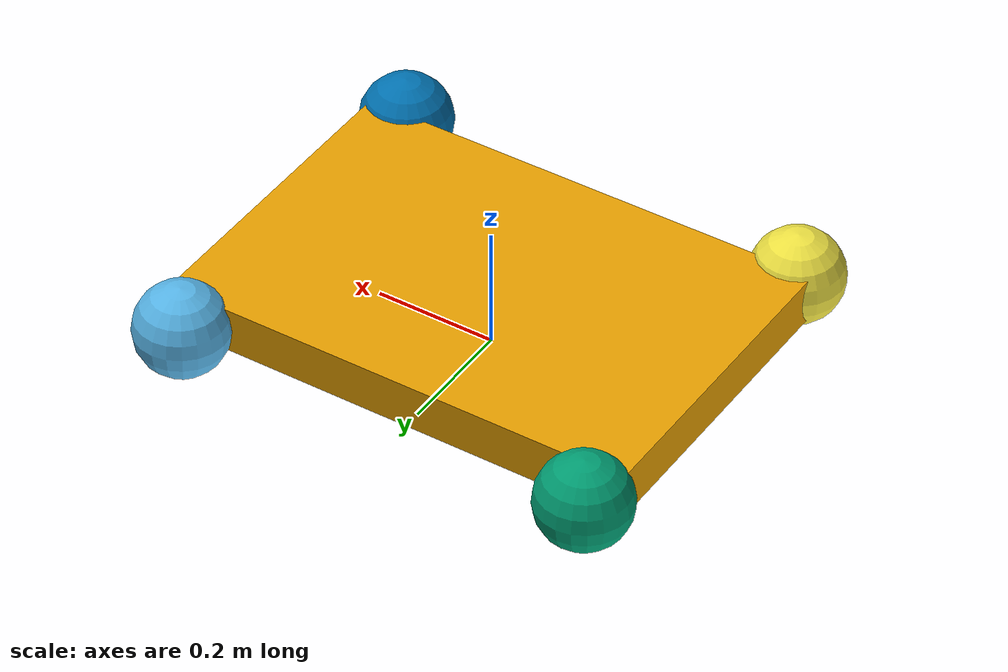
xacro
<?xml version="1.0"?>
<robot xmlns:xacro="http://www.ros.org/wiki/xacro" name="MyRobot" >

  <property name="mb_pi" value="3.14159265" />
  <property name="mb_mass" value="22.2260" />

  <property name="chassis_sx" value="0.7874" />
  <property name="chassis_sy" value="0.5334" />
  <property name="chassis_sz" value="0.0762" />

  <property name="wheel_height" value="0.0470" />
  <property name="wheel_radius" value="0.0758" />
  <property name="wheel_axis_offset" value="0.3494" />
  <property name="wheel_chassis_offset" value="0.0093" />
  <property name="wheel_mass" value="0.9072" />
  <property name="wheel_joint_urdf_max_effort" value="100.0" />
  <property name="wheel_joint_urdf_max_velocity" value="100.0" />
  <property name="wheel_joint_urdf_damping" value="0.0" />
  <property name="wheel_joint_urdf_friction" value="0.0" />

  <!-- Macros definition. -->
  <xacro:macro name="box_inertia" params="sizeX sizeY sizeZ mass *origin">
    <inertial>
      <mass value="${mass}" />
      <insert_block name="origin" />
      <inertia ixx="${mass / 12 * (sizeY * sizeY + sizeZ * sizeZ)}" ixy="0.0" ixz="0.0"
               iyy="${mass / 12 * (sizeX * sizeX + sizeZ * sizeZ)}" iyz="0.0"
               izz="${mass / 12 * (sizeX * sizeX + sizeY * sizeY)}" />
    </inertial>
  </xacro:macro>

  <xacro:macro name="sphere_inertia" params="radius mass *origin">
    <inertial>
      <mass value="${mass}" />
      <insert_block name="origin" />
      <inertia ixx="${2.0 / 5.0 * mass * radius * radius}" ixy="0.0" ixz="0.0"
               iyy="${2.0 / 5.0 * mass * radius * radius}" iyz="0.0"
               izz="${2.0 / 5.0 * mass * radius * radius}" />
    </inertial>
  </xacro:macro>

  <xacro:macro name="mr_wheel" params="fb lr parent sideX sideY scaleXZ">
    <joint name="${fb}_${lr}_wheel_joint" type="continuous">
      <parent link="${parent}" />
      <child link="${fb}_${lr}_wheel" />
      <origin xyz="${sideX * wheel_axis_offset} ${sideY * (chassis_sy / 2.0 + wheel_chassis_offset + wheel_height / 2.0)} ${wheel_radius}" rpy="0.0 0.0 0.0" />
      <axis xyz="0.0 1.0 0.0" />
      <limit effort="${wheel_joint_urdf_max_effort}" velocity="${wheel_joint_urdf_max_velocity}"/>
      <dynamics damping="${wheel_joint_urdf_damping}" friction="${wheel_joint_urdf_friction}"/>
    </joint>

    <link name="${fb}_${lr}_wheel" >
      <visual>
        <geometry>
          <sphere radius="${wheel_radius}"/>
        </geometry>
        <origin xyz="0.0 0.0 0.0" rpy="0.0 0.0 0.0" />
      </visual>
      <collision>
        <geometry>
          <sphere radius="${wheel_radius}"/>
        </geometry>
        <origin xyz="0.0 0.0 0.0" rpy="0.0 0.0 0.0" />
      </collision>
      <xacro:sphere_inertia radius="${wheel_radius}" mass="${wheel_mass}">
        <origin xyz="0.0 0.0 0.0" rpy="0.0 0.0 0.0" />
      </xacro:sphere_inertia>
    </link>

    <transmission name="${fb}_${lr}_wheel_transmission">
      <type>transmission_interface/SimpleTransmission</type>
      <joint name="${fb}_${lr}_wheel_joint">
        <hardwareInterface>VelocityJointInterface</hardwareInterface> <!-- Duplicate in "actuator" tag but for some reason this duplication is needed. Check http://answers.ros.org/question/186681/no-valid-hardware-interface-element-found-in-joint/ -->
      </joint>
      <actuator name="${fb}_${lr}_wheel_motor">
        <hardwareInterface>VelocityJointInterface</hardwareInterface> <!-- Duplicate in "joint" tag but for some reason this duplication is needed. Check http://answers.ros.org/question/186681/no-valid-hardware-interface-element-found-in-joint/  -->
        <mechanicalReduction>12.75</mechanicalReduction>
      </actuator>

    </transmission>
  </xacro:macro>

  <!-- Robot's definition. -->

  <!-- Chassis. -->
  <link name="chassis" >
    <visual>
      <geometry>
        <box size="${chassis_sx} ${chassis_sy} ${chassis_sz}" />
      </geometry>
      <origin xyz="0.0 0.0 ${wheel_radius}" rpy="0.0 0.0 0.0" />
    </visual>
    <collision>
      <geometry>
        <box size="${chassis_sx} ${chassis_sy} ${chassis_sz}" />
      </geometry>
      <origin xyz="0.0 0.0 ${wheel_radius}" rpy="0.0 0.0 0.0" />
    </collision>
    <xacro:box_inertia sizeX="${chassis_sx}" sizeY="${chassis_sy}" sizeZ="${chassis_sz}" mass="${mb_mass - 4 * wheel_mass}">
      <origin xyz="0.0 0.0 ${wheel_radius}" rpy="0.0 0.0 0.0" />
    </xacro:box_inertia>
  </link>

  <!-- Wheels. -->
  <xacro:mr_wheel fb="front" lr="left" parent="chassis" sideX="1.0" sideY="1.0" scaleXZ="1.0" />
  <xacro:mr_wheel fb="back" lr="left" parent="chassis" sideX="-1.0" sideY="1.0" scaleXZ="-1.0" />
  <xacro:mr_wheel fb="back" lr="right" parent="chassis" sideX="-1.0" sideY="-1.0" scaleXZ="1.0" />
  <xacro:mr_wheel fb="front" lr="right" parent="chassis" sideX="1.0" sideY="-1.0" scaleXZ="-1.0" />

</robot>
